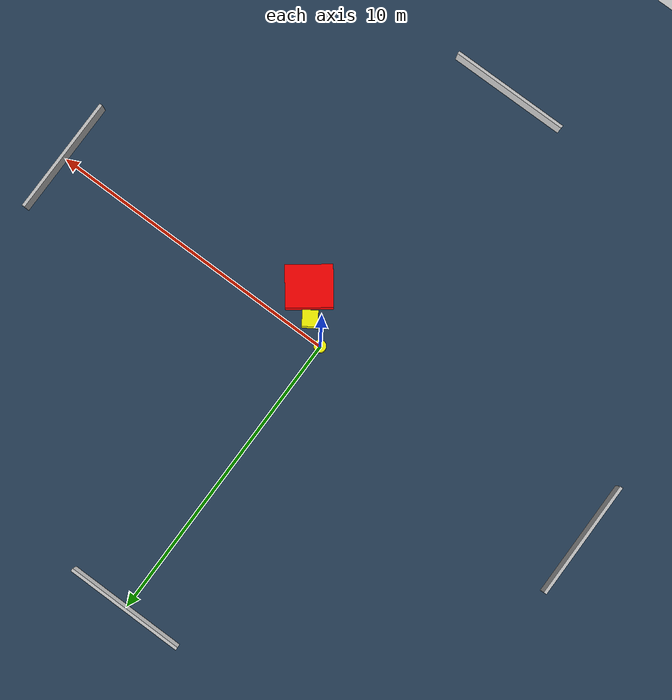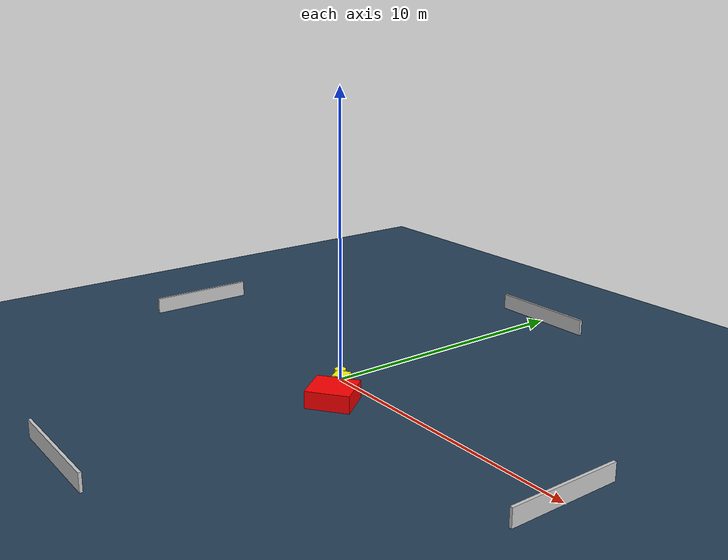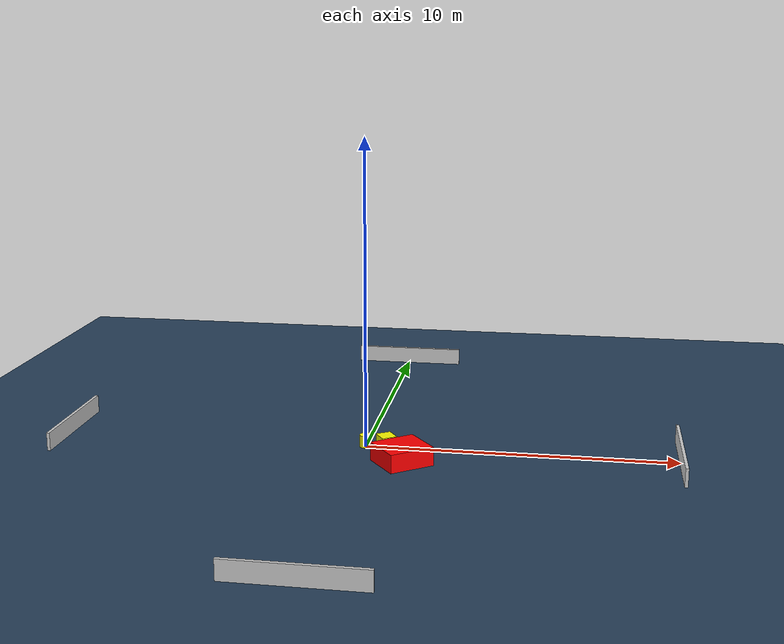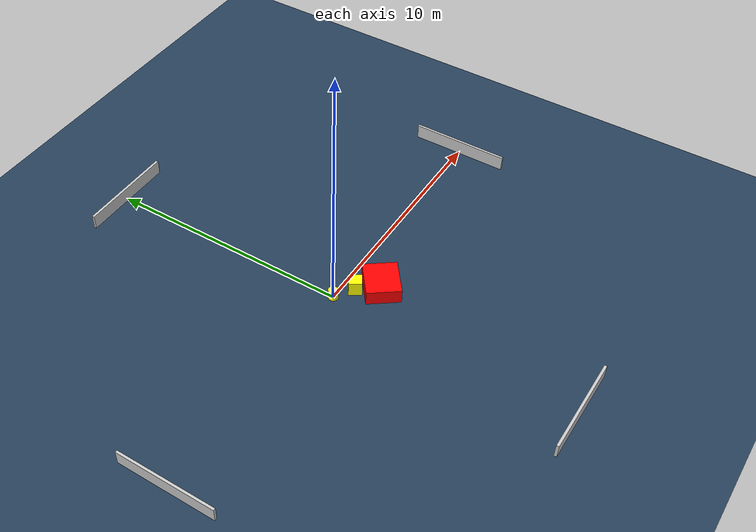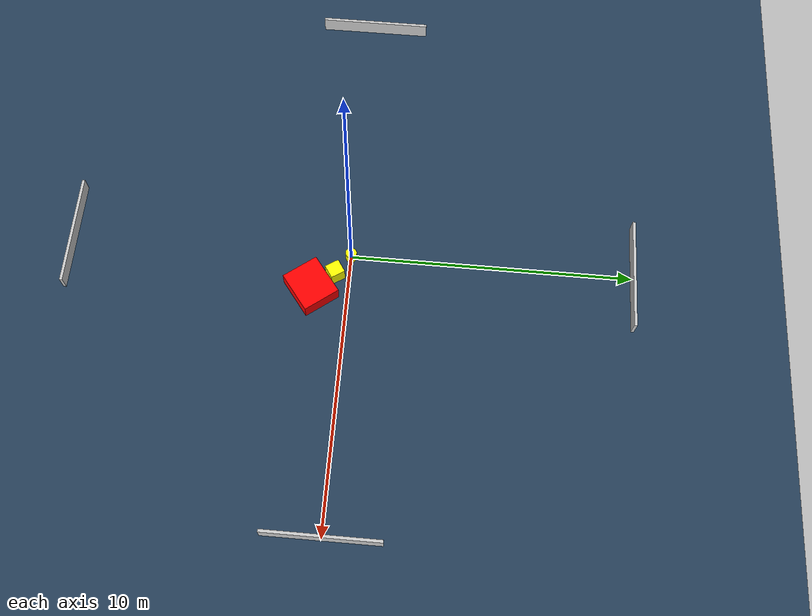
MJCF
<?xml version="1.0" ?>
<mujoco model="generated_environment">
  <option timestep="0.01" integrator="RK4" cone="elliptic"/>
  <default>
    <geom density="1"/>
  </default>
  <asset>
    <texture builtin="gradient" height="3072" name="skybox" rgb1="0.3 0.5 0.7" rgb2="0 0 0" type="skybox" width="512"/>
    <texture builtin="checker" height="300" name="groundplane" rgb1="0.2 0.3 0.4" rgb2="0.1 0.2 0.3" type="2d" width="300"/>
    <material name="groundplane" reflectance="0.2" texrepeat="5 5" texture="groundplane"/>
  </asset>
  <worldbody>
    <light dir="0 0 -1" directional="true" pos="0 0 1.5"/>
    <geom condim="3" friction="0.5 0.005 0.001" material="groundplane" name="floor" pos="0 0 0" size="0 0 0.05" type="plane"/>
    <body name="walls">
      <geom name="wall_1" condim="4" pos="-10.0 0.0 0.3" rgba="0.800000011920929 0.800000011920929 0.800000011920929 1.0" size="0.05 2.0 0.3" type="box"/>
      <geom name="wall_2" condim="4" pos="10.0 0.0 0.3" rgba="0.800000011920929 0.800000011920929 0.800000011920929 1.0" size="0.05 2.0 0.3" type="box"/>
      <geom name="wall_3" condim="4" pos="0.0 -10.0 0.3" rgba="0.800000011920929 0.800000011920929 0.800000011920929 1.0" size="2.0 0.05 0.3" type="box"/>
      <geom name="wall_4" condim="4" pos="0.0 10.0 0.3" rgba="0.800000011920929 0.800000011920929 0.800000011920929 1.0" size="2.0 0.05 0.3" type="box"/>
    </body>
    <body name="robot">
      <joint name="joint_x" type="slide" pos="0 0 0" axis="1 0 0"/>
      <joint name="joint_y" type="slide" pos="0 0 0" axis="0 1 0"/>
      <geom name="robot" type="cylinder" pos="0.0 0.0 0.2" size="0.2 0.2 0.0" mass="5.0" friction="1.0 0.005 0.0001" condim="4" rgba="1.0 1.0 0.0 1.0"/>
    </body>
    <body name="obstacle_1_movable">
      <geom name="obstacle_1_movable" condim="4" pos="0.7513391622227608 -0.4969999178238447 0.3" euler="0 0 122.98660307206376" friction="0.0 0.005 0.001" rgba="1.0 1.0 0.0 1.0" size="0.260275968395289 0.24944332643937925 0.3" type="box" mass="0.1"/>
      <joint type="free"/>
    </body>
    <body name="obstacle_2_static">
      <geom name="obstacle_2_static" condim="4" pos="1.370072528102075 -1.2856766398108852 0.3" euler="0 0 307.29456069109784" friction="0.0 0.005 0.001" rgba="1.0 0.0 0.0 1.0" size="0.6764847194939883 0.7550823697814992 0.3" type="box"/>
    </body>
  </worldbody>
  <actuator>
    <motor name="actuator_x" joint="joint_x" gear="1" ctrlrange="-1 1"/>
    <motor name="actuator_y" joint="joint_y" gear="1" ctrlrange="-1 1"/>
  </actuator>
</mujoco>
